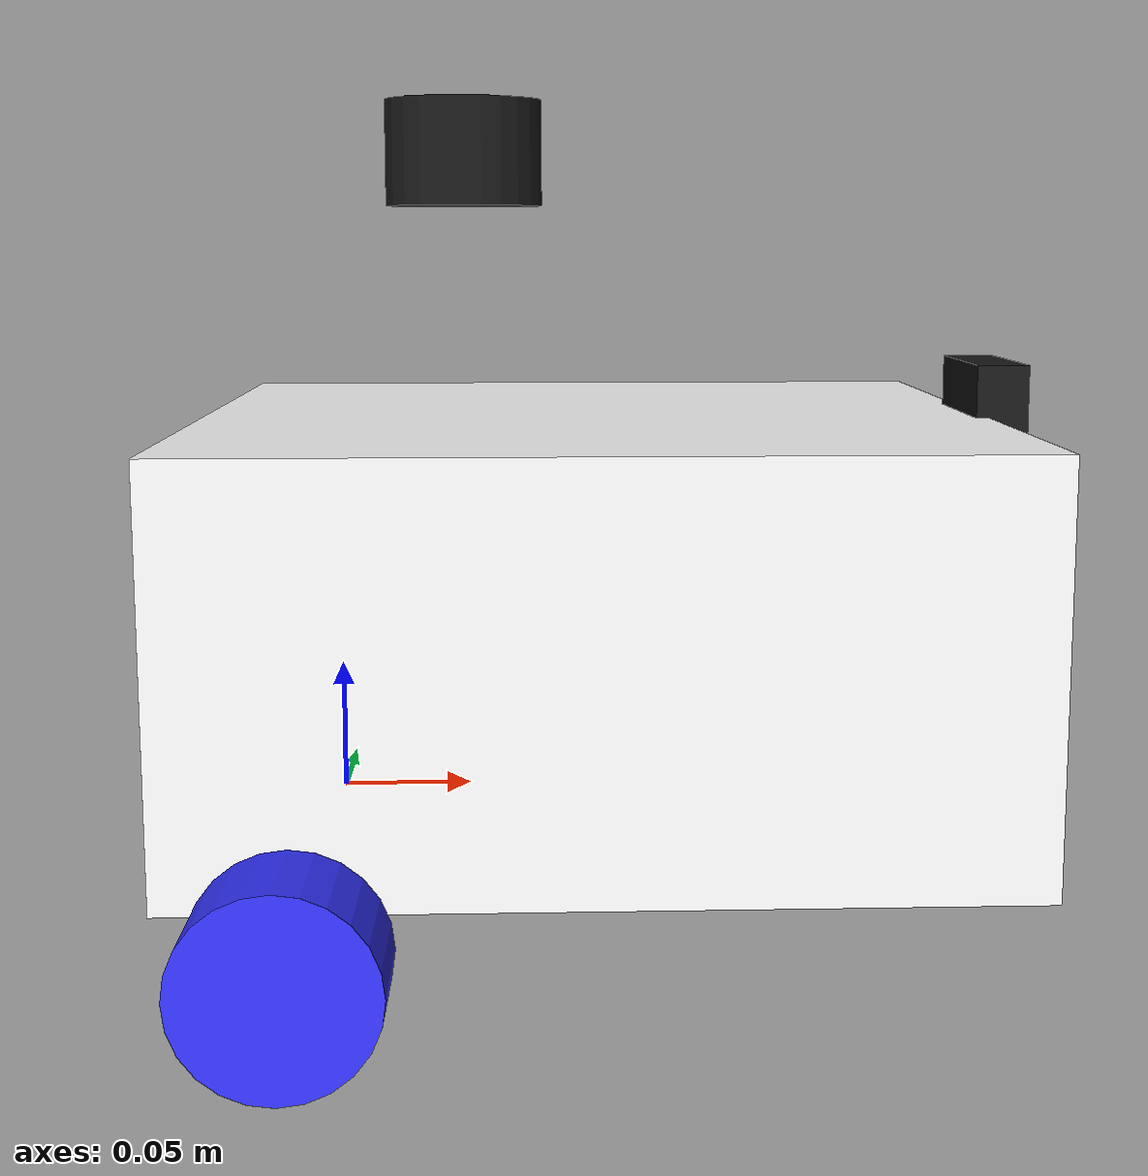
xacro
<?xml version="1.0"?>
<robot xmlns:xacro="http://www.ros.org/wiki/xacro" name="eurobot2027">
    <xacro:include filename="robot_core.xacro" />
    <xacro:include filename="lidar.xacro" />
    <xacro:include filename="camara.xacro" />

    <gazebo>
        <plugin filename="ignition-gazebo-joint-state-publisher-system" name="ignition::gazebo::systems::JointStatePublisher">
            <topic>joint_states</topic>
        </plugin>
    </gazebo>

</robot>

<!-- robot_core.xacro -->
<!-- Etiqueta raíz que indica que este es un archivo de robot y que usará variables Xacro -->

<robot xmlns:xacro="http://www.ros.org/wiki/xacro">

    <!-- #####################   LIBRERÍAS    ##################### -->

    <xacro:include filename="inertial_macros.xacro" />

    <!--                MATERIALES Y COLORES                        -->
    <!-- Define colores reutilizables para previsualizar en RViz.   -->
    <!-- Nota: Gazebo ignora estos colores, necesita sus etiquetas  -->
    <material name="white">
        <color rgba="1 1 1 1"/>
    </material>
    <material name="blue">
        <color rgba="0.2 0.2 1 1"/>
    </material>

    <!--                BASE LINK (El ancla del robot)              -->
    <!-- Es el origen matemático (0,0,0) sin geometría ni masa.     -->
    <!-- Su única función es ser el punto de referencia global.     -->
    <!-- Se anclan a él el chasis y los elementos motrices.         -->
    <!-- Lo hemos situado en el centro del eje trasero motriz.      -->

    <link name="base_link">
    </link>

    <!-- #######################   CHASIS   ####################### -->

    <!-- JOINT: Unión mecánica, fixed es como una soldadura-->
    <joint name="chassis_joint" type="fixed">
        <parent link="base_link"/>                                                                      <!-- parent es a quien nos unimos-->
        <child link="chassis"/>                                                                         <!-- child es quien se une al parent-->
        <origin xyz="-0.05 0 0"/>
    </joint>

    <!-- LINK: Las propiedades físicas de la pieza -->
    <link name="chassis">

        <!-- VISUAL: Lo que renderiza la pantalla. Aquí se cambiará -->
        <visual>
            <!-- Desplazamos el origen visual para que crezca hacia -->
            <!-- adelante (+X) y hacia arriba (+Z) librando el suelo-->
            <origin xyz="0.15 0 0.075"/>
            <geometry>
                <box size="0.3 0.3 0.15"/>
            </geometry>
            <material name="white"/>
        </visual>

        <!-- COLLISION: El volumen invisible que choca en Gazebo.   -->
        <!-- Regla de oro: NUNCA usar un STL complejo aquí.         -->
        <!-- Mantener formas primitivas para no sobrecargar la CPU. -->
        <!-- Podemos sustituir el box por un mesh si tenemos un     -->
        <!-- archivo STL con pocos polígonos (menos de 30 caras).  -->
        <collision>
            <origin xyz="0.15 0 0.075"/>
            <geometry>
                <box size="0.3 0.3 0.15"/>
            </geometry>
        </collision>

        <!-- INERTIAL: Masa y distribución de peso para el motor    -->
        <!-- de físicas. Sin esto el robot volará o temblará.       -->
        <!-- Cuando se tenga el archivo stl del chasis se miran en  -->
        <!-- propiedades. Pasar los valores a m, kg*m², kg          -->

        <!--        FORMA NOMAL DE USAR LA MACRO DE INERCIA         -->

                  <!-- Inercia matemática de un prisma rectangular -->

        <!--        FORMA DE USAR LA MACRO DE INERCIA               -->

        <xacro:inertial_box mass="5.0" x="0.3" y="0.3" z="0.15">
            <origin xyz="0.15 0 0.075" rpy="0 0 0"/>
        </xacro:inertial_box>

    </link>

    <!--                MACROS (Plantillas paramétricas)            -->
    <!-- Define la rueda una sola vez. Recibe parámetros dinámicos: -->
    <!-- 'prefix' (nombre left/right) y 'offset_y' (separación).    -->
    <!-- Son como las funciones en programación.                    -->

    <!-- #######################   RUEDAS   ####################### -->

    <xacro:macro name="rueda_motriz" params="prefix offset_y rotacion_z">

        <!-- type="continuous" indica que gira sin tope sobre un eje-->
        <joint name="${prefix}_wheel_joint" type="continuous">
            <parent link="base_link"/>
            <child link="${prefix}_wheel"/>
            <!-- Desplaza en Y y tumba el cilindro 90 grados (-pi/2)-->
            <origin xyz="0 ${offset_y} 0" rpy="-${pi/2} 0 0"/>
            <!-- Indica que la rueda gira sobre su eje Z local      -->
            <axis xyz="0 0 1"/>
        </joint>

        <link name="${prefix}_wheel">
            <visual>
                <origin xyz="0 0 0" rpy="0 0 ${rotacion_z}"/>                               <!-- No necesario ahora pero por si al importar el stl no encaja-->
                <geometry>
                    <cylinder radius="0.0325" length="0.04"/>
                </geometry>
                <material name="blue"/>
            </visual>
            <collision>
                <geometry>
                    <cylinder radius="0.0325" length="0.04"/>
                </geometry>
            </collision>

            <xacro:inertial_cylinder mass="1.0" length="0.04" radius="0.0325">
                <origin xyz="0 0 0" rpy="0 0 0"/>
            </xacro:inertial_cylinder>

        </link>
    </xacro:macro>

    <!--                INSTANCIACIÓN DE MACROS                     -->
    <!-- Crea las piezas físicas inyectando los parámetros.         -->

    <xacro:rueda_motriz prefix="left" offset_y="0.2" rotacion_z="0"/>
    <xacro:rueda_motriz prefix="right" offset_y="-0.2" rotacion_z="${pi}"/>

    <!-- #####################   RUEDA LOCA   ##################### -->
    <!-- Se pone unión fixed y después en gazebo se pondrá          -->
    <!-- rozamineto nulo para que actue como rueda loca             -->

    <joint name="caster_wheel_joint" type="fixed">
        <parent link="chassis"/>                                                             <!-- parent es a quien nos unimos-->
        <child link="caster_wheel"/>                                                         <!-- child es quien se une al parent-->
        <origin xyz="0.25 0 0.0"/>

    </joint>

    <!-- LINK: Las propiedades físicas de la pieza -->
    <link name="caster_wheel">

        <visual>
            <origin xyz="0 0 0.0"/>
            <geometry>
                <sphere radius="0.0325"/>
            </geometry>
            <material name="blue"/>
        </visual>

        <collision>
            <origin xyz="0 0 0"/>
            <geometry>
                <sphere radius="0.0325"/>
            </geometry>
        </collision>

        <xacro:inertial_sphere mass="0.1" radius="0.0325">
            <origin xyz="0 0 0" rpy="0 0 0"/>
        </xacro:inertial_sphere>

    </link>

    <!-- CONTROLADOR DE TRACCIÓN DIFERENCIAL (GAZEBO)               -->

    <gazebo>
        <plugin filename="ignition-gazebo-diff-drive-system" name="ignition::gazebo::systems::DiffDrive">
            <left_joint>left_wheel_joint</left_joint>
            <right_joint>right_wheel_joint</right_joint>
            <!-- Separación total entre ruedas (0.2 + 0.2) -->
            <wheel_separation>0.4</wheel_separation>
            <!-- Radio de la rueda en metros -->
            <wheel_radius>0.0325</wheel_radius>
            <odom_publish_frequency>50</odom_publish_frequency>
            <topic>cmd_vel</topic>
        </plugin>
    </gazebo>

    <gazebo>
        <plugin filename="ignition-gazebo-diff-drive-system" name="ignition::gazebo::systems::DiffDrive">
            <left_joint>left_wheel_joint</left_joint>
            <right_joint>right_wheel_joint</right_joint>
            <wheel_separation>0.4</wheel_separation>
            <wheel_radius>0.0325</wheel_radius>

            <!-- Publica la odeometría a 50 Hz -->
            <odom_publish_frequency>50</odom_publish_frequency>
            <!-- Topics -->
            <topic>cmd_vel</topic>
            <odom_topic>odom</odom_topic>
            <tf_topic>tf</tf_topic>
            <!-- Frames: nombre de los datos que van por el topic tf-->
            <frame_id>odom</frame_id>                                                       <!-- frame_id es el nombre del frame padre, el que se no mueve -->
            <child_frame_id>base_link</child_frame_id>                                      <!-- child_frame_id es el nombre del frame hijo, el que se mueve respecto al padre -->
        </plugin>
    </gazebo>

</robot>

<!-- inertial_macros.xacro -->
<robot xmlns:xacro="http://www.ros.org/wiki/xacro">

    <!-- Inercia de una caja (Prisma rectangular) -->
    <xacro:macro name="inertial_box" params="mass x y z *origin">
        <inertial>
            <xacro:insert_block name="origin"/>
            <mass value="${mass}" />
            <inertia ixx="${(1/12) * mass * (y*y+z*z)}" ixy="0.0" ixz="0.0"
                     iyy="${(1/12) * mass * (x*x+z*z)}" iyz="0.0"
                     izz="${(1/12) * mass * (x*x+y*y)}" />
        </inertial>
    </xacro:macro>

    <!-- Inercia de un cilindro -->
    <xacro:macro name="inertial_cylinder" params="mass length radius *origin">
        <inertial>
            <xacro:insert_block name="origin"/>
            <mass value="${mass}" />
            <inertia ixx="${(1/12) * mass * (3*radius*radius + length*length)}" ixy="0.0" ixz="0.0"
                     iyy="${(1/12) * mass * (3*radius*radius + length*length)}" iyz="0.0"
                     izz="${(1/2) * mass * (radius*radius)}" />
        </inertial>
    </xacro:macro>

    <!-- Inercia de una esfera -->
    <xacro:macro name="inertial_sphere" params="mass radius *origin">
        <inertial>
            <xacro:insert_block name="origin"/>
            <mass value="${mass}" />
            <inertia ixx="${(2/5) * mass * (radius*radius)}" ixy="0.0" ixz="0.0"
                     iyy="${(2/5) * mass * (radius*radius)}" iyz="0.0"
                     izz="${(2/5) * mass * (radius*radius)}" />
        </inertial>
    </xacro:macro>

</robot>

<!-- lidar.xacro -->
<robot xmlns:xacro="http://www.ros.org/wiki/xacro">

    <joint name="laser_joint" type="fixed">
        <parent link="chassis"/>
        <child link="laser_frame"/>
        <origin xyz="0.1 0 0.25" rpy="0 0 0"/>
    </joint>

    <link name="laser_frame">
        <visual>
            <geometry>
                <cylinder radius="0.03" length="0.04"/>
            </geometry>
            <material name="black">
                <color rgba="0.1 0.1 0.1 1"/>
            </material>
        </visual>
    </link>

    <gazebo reference="laser_frame">
        <sensor name="lidar" type="gpu_lidar">
            <pose>0 0 0 0 0 0</pose>
            <always_on>true</always_on>
            <visualize>true</visualize>
            <update_rate>10</update_rate>
            <topic>scan</topic>
            <gz_frame_id>laser_frame</gz_frame_id>
            <lidar>
                <scan>
                    <horizontal>
                        <samples>360</samples>
                        <resolution>1.0</resolution>
                        <min_angle>-3.14159</min_angle>
                        <max_angle>3.14159</max_angle>
                    </horizontal>
                </scan>
                <range>
                    <min>0.12</min>
                    <max>8.0</max>
                    <resolution>0.01</resolution>
                </range>
            </lidar>
        </sensor>
    </gazebo>

</robot>

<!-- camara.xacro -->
<robot xmlns:xacro="http://www.ros.org/wiki/xacro">

    <!-- Posición de la cámara-->
    <joint name="camera_joint" type="fixed">
        <parent link="chassis"/>
        <child link="camera_link"/>
        <!-- Ajusta la posición para que quede en el frontal superior del robot -->
        <origin xyz="0.305 0 0.15" rpy="0 0 0"/>
    </joint>

    <link name="camera_link">
        <visual>
            <geometry><box size="0.02 0.06 0.04"/></geometry>
            <material name="black"><color rgba="0.1 0.1 0.1 1"/></material>
        </visual>
    </link>

    <!-- Corrección del sistema de coordenadas para OpenCV (OpenCV tiene el eje Z apuntando hacia adelante y X a la derecha)-->
    <joint name="camera_optical_joint" type="fixed">
        <parent link="camera_link"/>
        <child link="camera_link_optical"/>
    <!-- Lo giramos para corregir la orientación -->
        <origin xyz="0 0 0" rpy="${-pi/2} 0 ${-pi/2}"/>
    </joint>
    <link name="camera_link_optical"></link>

    <gazebo reference="camera_link">
        <sensor name="camera_sensor" type="camera">
            <pose>0 0 0 0 0 0</pose>
            <always_on>true</always_on>
            <visualize>true</visualize>
            <update_rate>30</update_rate>
            <topic>camera/image_raw</topic>
            <!-- Vincular los datos al frame corregido, no al físico -->
            <gz_frame_id>camera_link_optical</gz_frame_id>
            <camera>
                <horizontal_fov>1.089</horizontal_fov>
                <image>
                    <width>640</width>
                    <height>480</height>
                    <format>R8G8B8</format>
                </image>
                <clip>
                    <near>0.02</near>
                    <far>8.0</far>
                </clip>
            </camera>
        </sensor>
    </gazebo>

</robot>
